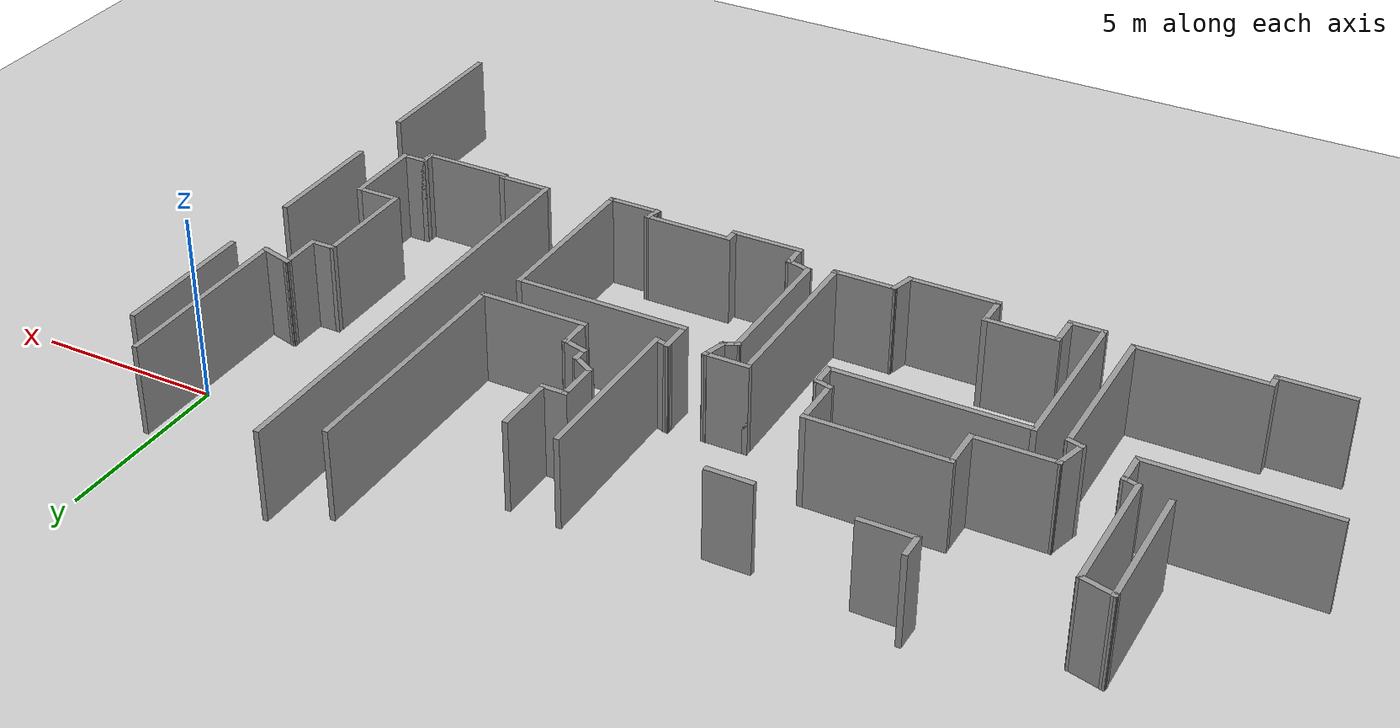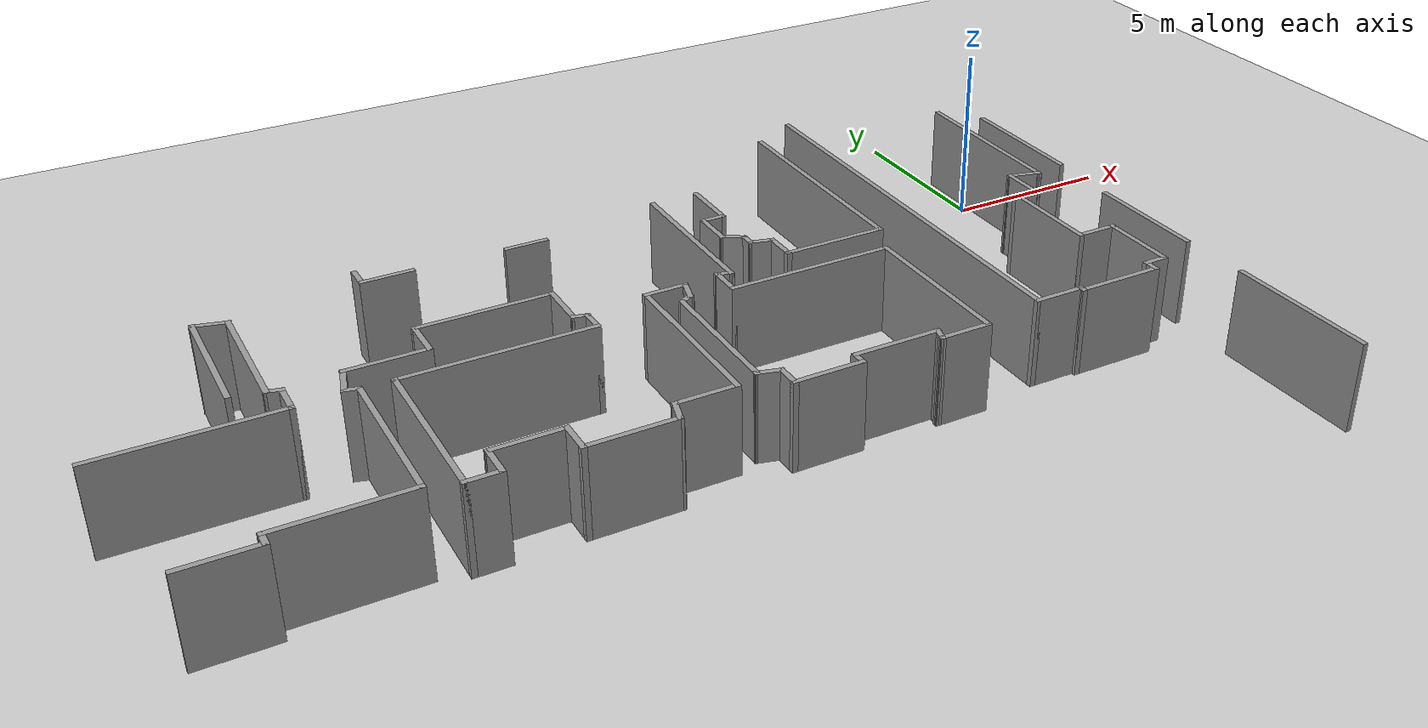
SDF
<sdf version="1.7">
 <world name="default">
  <model name="ground_plane">
   <static>1</static>
   <link name="link">
    <collision name="collision">
     <geometry><plane><normal>0 0 1</normal><size>100 100</size></plane></geometry>
     <surface>
      <contact><collide_bitmask>65535</collide_bitmask></contact>
      <friction><ode><mu>100</mu><mu2>50</mu2></ode></friction>
     </surface>
    </collision>
    <visual name="visual">
     <cast_shadows>0</cast_shadows>
     <geometry><plane><normal>0 0 1</normal><size>100 100</size></plane></geometry>
     <material>
      <script><uri>file://media/materials/scripts/gazebo.material</uri><name>Gazebo/Grey</name></script>
     </material>
    </visual>
   </link>
  </model>
  <model name="Hospital">
   <pose>0.328682 -0.388502 0 0 -0 0</pose>
   <link name="Wall_202">
    <collision name="Wall_202_Collision">
     <geometry><box><size>4.25 0.15 2.5</size></box></geometry>
     <pose>0 0 1.25 0 -0 0</pose>
    </collision>
    <visual name="Wall_202_Visual">
     <pose>0 0 1.25 0 -0 0</pose>
     <geometry><box><size>4.25 0.15 2.5</size></box></geometry>
     <material>
      <script><uri>file://media/materials/scripts/gazebo.material</uri><name>Gazebo/Grey</name></script>
      <ambient>1 1 1 1</ambient>
     </material>
     <meta><layer>0</layer></meta>
    </visual>
    <pose>0.896252 -12.2018 0 0 -0 1.5708</pose>
   </link>
   <link name="Wall_208">
    <collision name="Wall_208_Collision">
     <geometry><box><size>3.5 0.15 2.5</size></box></geometry>
     <pose>0 0 1.25 0 -0 0</pose>
    </collision>
    <visual name="Wall_208_Visual">
     <pose>0 0 1.25 0 -0 0</pose>
     <geometry><box><size>3.5 0.15 2.5</size></box></geometry>
     <material>
      <script><uri>file://media/materials/scripts/gazebo.material</uri><name>Gazebo/Grey</name></script>
      <ambient>1 1 1 1</ambient>
     </material>
     <meta><layer>0</layer></meta>
    </visual>
    <pose>0.824913 -6.44811 0 0 -0 1.5708</pose>
   </link>
   <link name="Wall_214">
    <collision name="Wall_214_Collision">
     <geometry><box><size>4 0.15 2.5</size></box></geometry>
     <pose>0 0 1.25 0 -0 0</pose>
    </collision>
    <visual name="Wall_214_Visual">
     <pose>0 0 1.25 0 -0 0</pose>
     <geometry><box><size>4 0.15 2.5</size></box></geometry>
     <material>
      <script><uri>file://media/materials/scripts/gazebo.material</uri><name>Gazebo/Grey</name></script>
      <ambient>1 1 1 1</ambient>
     </material>
     <meta><layer>0</layer></meta>
    </visual>
    <pose>0.924913 -0.648111 0 0 -0 1.5708</pose>
   </link>
   <link name="Wall_230">
    <collision name="Wall_230_Collision">
     <geometry><box><size>5.25 0.15 2.5</size></box></geometry>
     <pose>0 0 1.25 0 -0 0</pose>
    </collision>
    <visual name="Wall_230_Visual">
     <pose>0 0 1.25 0 -0 0</pose>
     <geometry><box><size>5.25 0.15 2.5</size></box></geometry>
     <material>
      <script><uri>file://media/materials/scripts/gazebo.material</uri><name>Gazebo/Grey</name></script>
      <ambient>1 1 1 1</ambient>
     </material>
     <meta><layer>0</layer></meta>
    </visual>
    <pose>-0.019796 -0.193556 0 0 -0 -1.5708</pose>
   </link>
   <link name="Wall_231">
    <collision name="Wall_231_Collision">
     <geometry><box><size>1 0.15 2.5</size></box></geometry>
     <pose>0 0 1.25 0 -0 0</pose>
    </collision>
    <visual name="Wall_231_Visual">
     <pose>0 0 1.25 0 -0 0</pose>
     <geometry><box><size>1 0.15 2.5</size></box></geometry>
     <material>
      <script><uri>file://media/materials/scripts/gazebo.material</uri><name>Gazebo/Grey</name></script>
      <ambient>1 1 1 1</ambient>
     </material>
     <meta><layer>0</layer></meta>
    </visual>
    <pose>-0.430314 -2.63356 0 0 -0 2.87979</pose>
   </link>
   <link name="Wall_232">
    <collision name="Wall_232_Collision">
     <geometry><box><size>1.25 0.15 2.5</size></box></geometry>
     <pose>0 0 1.25 0 -0 0</pose>
    </collision>
    <visual name="Wall_232_Visual">
     <pose>0 0 1.25 0 -0 0</pose>
     <geometry><box><size>1.25 0.15 2.5</size></box></geometry>
     <material>
      <script><uri>file://media/materials/scripts/gazebo.material</uri><name>Gazebo/Grey</name></script>
      <ambient>1 1 1 1</ambient>
     </material>
     <meta><layer>0</layer></meta>
    </visual>
    <pose>-0.840833 -3.07356 0 0 -0 -1.5708</pose>
   </link>
   <link name="Wall_233">
    <collision name="Wall_233_Collision">
     <geometry><box><size>0.75 0.15 2.5</size></box></geometry>
     <pose>0 0 1.25 0 -0 0</pose>
    </collision>
    <visual name="Wall_233_Visual">
     <pose>0 0 1.25 0 -0 0</pose>
     <geometry><box><size>0.75 0.15 2.5</size></box></geometry>
     <material>
      <script><uri>file://media/materials/scripts/gazebo.material</uri><name>Gazebo/Grey</name></script>
      <ambient>1 1 1 1</ambient>
     </material>
     <meta><layer>0</layer></meta>
    </visual>
    <pose>-1.14083 -3.62356 0 0 -0 3.14159</pose>
   </link>
   <link name="Wall_234">
    <collision name="Wall_234_Collision">
     <geometry><box><size>3 0.15 2.5</size></box></geometry>
     <pose>0 0 1.25 0 -0 0</pose>
    </collision>
    <visual name="Wall_234_Visual">
     <pose>0 0 1.25 0 -0 0</pose>
     <geometry><box><size>3 0.15 2.5</size></box></geometry>
     <material>
      <script><uri>file://media/materials/scripts/gazebo.material</uri><name>Gazebo/Grey</name></script>
      <ambient>1 1 1 1</ambient>
     </material>
     <meta><layer>0</layer></meta>
    </visual>
    <pose>-1.44083 -5.04856 0 0 -0 -1.5708</pose>
   </link>
   <link name="Wall_235">
    <collision name="Wall_235_Collision">
     <geometry><box><size>1.25 0.15 2.5</size></box></geometry>
     <pose>0 0 1.25 0 -0 0</pose>
    </collision>
    <visual name="Wall_235_Visual">
     <pose>0 0 1.25 0 -0 0</pose>
     <geometry><box><size>1.25 0.15 2.5</size></box></geometry>
     <material>
      <script><uri>file://media/materials/scripts/gazebo.material</uri><name>Gazebo/Grey</name></script>
      <ambient>1 1 1 1</ambient>
     </material>
     <meta><layer>0</layer></meta>
    </visual>
    <pose>-0.890832 -6.47356 0 0 -0 0</pose>
   </link>
   <link name="Wall_236">
    <collision name="Wall_236_Collision">
     <geometry><box><size>2.25 0.15 2.5</size></box></geometry>
     <pose>0 0 1.25 0 -0 0</pose>
    </collision>
    <visual name="Wall_236_Visual">
     <pose>0 0 1.25 0 -0 0</pose>
     <geometry><box><size>2.25 0.15 2.5</size></box></geometry>
     <material>
      <script><uri>file://media/materials/scripts/gazebo.material</uri><name>Gazebo/Grey</name></script>
      <ambient>1 1 1 1</ambient>
     </material>
     <meta><layer>0</layer></meta>
    </visual>
    <pose>-0.340833 -7.52356 0 0 -0 -1.5708</pose>
   </link>
   <link name="Wall_237">
    <collision name="Wall_237_Collision">
     <geometry><box><size>0.75 0.15 2.5</size></box></geometry>
     <pose>0 0 1.25 0 -0 0</pose>
    </collision>
    <visual name="Wall_237_Visual">
     <pose>0 0 1.25 0 -0 0</pose>
     <geometry><box><size>0.75 0.15 2.5</size></box></geometry>
     <material>
      <script><uri>file://media/materials/scripts/gazebo.material</uri><name>Gazebo/Grey</name></script>
      <ambient>1 1 1 1</ambient>
     </material>
     <meta><layer>0</layer></meta>
    </visual>
    <pose>-0.640833 -8.57356 0 0 -0 3.14159</pose>
   </link>
   <link name="Wall_238">
    <collision name="Wall_238_Collision">
     <geometry><box><size>0.5 0.15 2.5</size></box></geometry>
     <pose>0 0 1.25 0 -0 0</pose>
    </collision>
    <visual name="Wall_238_Visual">
     <pose>0 0 1.25 0 -0 0</pose>
     <geometry><box><size>0.5 0.15 2.5</size></box></geometry>
     <material>
      <script><uri>file://media/materials/scripts/gazebo.material</uri><name>Gazebo/Grey</name></script>
      <ambient>1 1 1 1</ambient>
     </material>
     <meta><layer>0</layer></meta>
    </visual>
    <pose>-0.940832 -8.74856 0 0 -0 -1.5708</pose>
   </link>
   <link name="Wall_239">
    <collision name="Wall_239_Collision">
     <geometry><box><size>2.5 0.15 2.5</size></box></geometry>
     <pose>0 0 1.25 0 -0 0</pose>
    </collision>
    <visual name="Wall_239_Visual">
     <pose>0 0 1.25 0 -0 0</pose>
     <geometry><box><size>2.5 0.15 2.5</size></box></geometry>
     <material>
      <script><uri>file://media/materials/scripts/gazebo.material</uri><name>Gazebo/Grey</name></script>
      <ambient>1 1 1 1</ambient>
     </material>
     <meta><layer>0</layer></meta>
    </visual>
    <pose>-2.11583 -8.92356 0 0 -0 3.14159</pose>
   </link>
   <link name="Wall_240">
    <collision name="Wall_240_Collision">
     <geometry><box><size>0.25 0.15 2.5</size></box></geometry>
     <pose>0 0 1.25 0 -0 0</pose>
    </collision>
    <visual name="Wall_240_Visual">
     <pose>0 0 1.25 0 -0 0</pose>
     <geometry><box><size>0.25 0.15 2.5</size></box></geometry>
     <material>
      <script><uri>file://media/materials/scripts/gazebo.material</uri><name>Gazebo/Grey</name></script>
      <ambient>1 1 1 1</ambient>
     </material>
     <meta><layer>0</layer></meta>
    </visual>
    <pose>-3.29083 -8.87356 0 0 -0 1.5708</pose>
   </link>
   <link name="Wall_241">
    <collision name="Wall_241_Collision">
     <geometry><box><size>1.5 0.15 2.5</size></box></geometry>
     <pose>0 0 1.25 0 -0 0</pose>
    </collision>
    <visual name="Wall_241_Visual">
     <pose>0 0 1.25 0 -0 0</pose>
     <geometry><box><size>1.5 0.15 2.5</size></box></geometry>
     <material>
      <script><uri>file://media/materials/scripts/gazebo.material</uri><name>Gazebo/Grey</name></script>
      <ambient>1 1 1 1</ambient>
     </material>
     <meta><layer>0</layer></meta>
    </visual>
    <pose>-3.96583 -8.82356 0 0 -0 3.14159</pose>
   </link>
   <link name="Wall_242">
    <collision name="Wall_242_Collision">
     <geometry><box><size>12.75 0.15 2.5</size></box></geometry>
     <pose>0 0 1.25 0 -0 0</pose>
    </collision>
    <visual name="Wall_242_Visual">
     <pose>0 0 1.25 0 -0 0</pose>
     <geometry><box><size>12.75 0.15 2.5</size></box></geometry>
     <material>
      <script><uri>file://media/materials/scripts/gazebo.material</uri><name>Gazebo/Grey</name></script>
      <ambient>1 1 1 1</ambient>
     </material>
     <meta><layer>0</layer></meta>
    </visual>
    <pose>-4.64083 -2.52356 0 0 -0 1.5708</pose>
   </link>
   <link name="Wall_252">
    <collision name="Wall_252_Collision">
     <geometry><box><size>6.75 0.15 2.5</size></box></geometry>
     <pose>0 0 1.25 0 -0 0</pose>
    </collision>
    <visual name="Wall_252_Visual">
     <pose>0 0 1.25 0 -0 0</pose>
     <geometry><box><size>6.75 0.15 2.5</size></box></geometry>
     <material>
      <script><uri>file://media/materials/scripts/gazebo.material</uri><name>Gazebo/Grey</name></script>
      <ambient>1 1 1 1</ambient>
     </material>
     <meta><layer>0</layer></meta>
    </visual>
    <pose>-5.99083 -0.273559 0 0 -0 -1.5708</pose>
   </link>
   <link name="Wall_253">
    <collision name="Wall_253_Collision">
     <geometry><box><size>3 0.15 2.5</size></box></geometry>
     <pose>0 0 1.25 0 -0 0</pose>
    </collision>
    <visual name="Wall_253_Visual">
     <pose>0 0 1.25 0 -0 0</pose>
     <geometry><box><size>3 0.15 2.5</size></box></geometry>
     <material>
      <script><uri>file://media/materials/scripts/gazebo.material</uri><name>Gazebo/Grey</name></script>
      <ambient>1 1 1 1</ambient>
     </material>
     <meta><layer>0</layer></meta>
    </visual>
    <pose>-7.41583 -3.57356 0 0 -0 3.14159</pose>
   </link>
   <link name="Wall_254">
    <collision name="Wall_254_Collision">
     <geometry><box><size>1 0.15 2.5</size></box></geometry>
     <pose>0 0 1.25 0 -0 0</pose>
    </collision>
    <visual name="Wall_254_Visual">
     <pose>0 0 1.25 0 -0 0</pose>
     <geometry><box><size>1 0.15 2.5</size></box></geometry>
     <material>
      <script><uri>file://media/materials/scripts/gazebo.material</uri><name>Gazebo/Grey</name></script>
      <ambient>1 1 1 1</ambient>
     </material>
     <meta><layer>0</layer></meta>
    </visual>
    <pose>-8.84083 -3.14856 0 0 -0 1.5708</pose>
   </link>
   <link name="Wall_255">
    <collision name="Wall_255_Collision">
     <geometry><box><size>0.75 0.15 2.5</size></box></geometry>
     <pose>0 0 1.25 0 -0 0</pose>
    </collision>
    <visual name="Wall_255_Visual">
     <pose>0 0 1.25 0 -0 0</pose>
     <geometry><box><size>0.75 0.15 2.5</size></box></geometry>
     <material>
      <script><uri>file://media/materials/scripts/gazebo.material</uri><name>Gazebo/Grey</name></script>
      <ambient>1 1 1 1</ambient>
     </material>
     <meta><layer>0</layer></meta>
    </visual>
    <pose>-9.13061 -2.64591 0 0 -0 2.87979</pose>
   </link>
   <link name="Wall_256">
    <collision name="Wall_256_Collision">
     <geometry><box><size>0.5 0.15 2.5</size></box></geometry>
     <pose>0 0 1.25 0 -0 0</pose>
    </collision>
    <visual name="Wall_256_Visual">
     <pose>0 0 1.25 0 -0 0</pose>
     <geometry><box><size>0.5 0.15 2.5</size></box></geometry>
     <material>
      <script><uri>file://media/materials/scripts/gazebo.material</uri><name>Gazebo/Grey</name></script>
      <ambient>1 1 1 1</ambient>
     </material>
     <meta><layer>0</layer></meta>
    </visual>
    <pose>-9.42039 -2.39327 0 0 -0 1.5708</pose>
   </link>
   <link name="Wall_257">
    <collision name="Wall_257_Collision">
     <geometry><box><size>0.75 0.15 2.5</size></box></geometry>
     <pose>0 0 1.25 0 -0 0</pose>
    </collision>
    <visual name="Wall_257_Visual">
     <pose>0 0 1.25 0 -0 0</pose>
     <geometry><box><size>0.75 0.15 2.5</size></box></geometry>
     <material>
      <script><uri>file://media/materials/scripts/gazebo.material</uri><name>Gazebo/Grey</name></script>
      <ambient>1 1 1 1</ambient>
     </material>
     <meta><layer>0</layer></meta>
    </visual>
    <pose>-9.6802 -2.06827 0 0 -0 2.61799</pose>
   </link>
   <link name="Wall_258">
    <collision name="Wall_258_Collision">
     <geometry><box><size>1.25 0.15 2.5</size></box></geometry>
     <pose>0 0 1.25 0 -0 0</pose>
    </collision>
    <visual name="Wall_258_Visual">
     <pose>0 0 1.25 0 -0 0</pose>
     <geometry><box><size>1.25 0.15 2.5</size></box></geometry>
     <material>
      <script><uri>file://media/materials/scripts/gazebo.material</uri><name>Gazebo/Grey</name></script>
      <ambient>1 1 1 1</ambient>
     </material>
     <meta><layer>0</layer></meta>
    </visual>
    <pose>-9.94 -1.36827 0 0 -0 1.5708</pose>
   </link>
   <link name="Wall_259">
    <collision name="Wall_259_Collision">
     <geometry><box><size>0.75 0.15 2.5</size></box></geometry>
     <pose>0 0 1.25 0 -0 0</pose>
    </collision>
    <visual name="Wall_259_Visual">
     <pose>0 0 1.25 0 -0 0</pose>
     <geometry><box><size>0.75 0.15 2.5</size></box></geometry>
     <material>
      <script><uri>file://media/materials/scripts/gazebo.material</uri><name>Gazebo/Grey</name></script>
      <ambient>1 1 1 1</ambient>
     </material>
     <meta><layer>0</layer></meta>
    </visual>
    <pose>-9.64 -0.818268 0 0 -0 0</pose>
   </link>
   <link name="Wall_260">
    <collision name="Wall_260_Collision">
     <geometry><box><size>1.75 0.15 2.5</size></box></geometry>
     <pose>0 0 1.25 0 -0 0</pose>
    </collision>
    <visual name="Wall_260_Visual">
     <pose>0 0 1.25 0 -0 0</pose>
     <geometry><box><size>1.75 0.15 2.5</size></box></geometry>
     <material>
      <script><uri>file://media/materials/scripts/gazebo.material</uri><name>Gazebo/Grey</name></script>
      <ambient>1 1 1 1</ambient>
     </material>
     <meta><layer>0</layer></meta>
    </visual>
    <pose>-9.34 -0.018268 0 0 -0 1.5708</pose>
   </link>
   <link name="Wall_262">
    <collision name="Wall_262_Collision">
     <geometry><box><size>4.75 0.15 2.5</size></box></geometry>
     <pose>0 0 1.25 0 -0 0</pose>
    </collision>
    <visual name="Wall_262_Visual">
     <pose>0 0 1.25 0 -0 0</pose>
     <geometry><box><size>4.75 0.15 2.5</size></box></geometry>
     <material>
      <script><uri>file://media/materials/scripts/gazebo.material</uri><name>Gazebo/Grey</name></script>
      <ambient>1 1 1 1</ambient>
     </material>
     <meta><layer>0</layer></meta>
    </visual>
    <pose>-10.69 -1.51827 0 0 -0 -1.5708</pose>
   </link>
   <link name="Wall_263">
    <collision name="Wall_263_Collision">
     <geometry><box><size>0.5 0.15 2.5</size></box></geometry>
     <pose>0 0 1.25 0 -0 0</pose>
    </collision>
    <visual name="Wall_263_Visual">
     <pose>0 0 1.25 0 -0 0</pose>
     <geometry><box><size>0.5 0.15 2.5</size></box></geometry>
     <material>
      <script><uri>file://media/materials/scripts/gazebo.material</uri><name>Gazebo/Grey</name></script>
      <ambient>1 1 1 1</ambient>
     </material>
     <meta><layer>0</layer></meta>
    </visual>
    <pose>-10.859 -3.77297 0 0 -0 2.87979</pose>
   </link>
   <link name="Wall_264">
    <collision name="Wall_264_Collision">
     <geometry><box><size>1 0.15 2.5</size></box></geometry>
     <pose>0 0 1.25 0 -0 0</pose>
    </collision>
    <visual name="Wall_264_Visual">
     <pose>0 0 1.25 0 -0 0</pose>
     <geometry><box><size>1 0.15 2.5</size></box></geometry>
     <material>
      <script><uri>file://media/materials/scripts/gazebo.material</uri><name>Gazebo/Grey</name></script>
      <ambient>1 1 1 1</ambient>
     </material>
     <meta><layer>0</layer></meta>
    </visual>
    <pose>-11.0281 -4.15268 0 0 -0 -1.5708</pose>
   </link>
   <link name="Wall_265">
    <collision name="Wall_265_Collision">
     <geometry><box><size>4.75 0.15 2.5</size></box></geometry>
     <pose>0 0 1.25 0 -0 0</pose>
    </collision>
    <visual name="Wall_265_Visual">
     <pose>0 0 1.25 0 -0 0</pose>
     <geometry><box><size>4.75 0.15 2.5</size></box></geometry>
     <material>
      <script><uri>file://media/materials/scripts/gazebo.material</uri><name>Gazebo/Grey</name></script>
      <ambient>1 1 1 1</ambient>
     </material>
     <meta><layer>0</layer></meta>
    </visual>
    <pose>-8.72808 -4.57768 0 0 -0 0</pose>
   </link>
   <link name="Wall_266">
    <collision name="Wall_266_Collision">
     <geometry><box><size>4.75 0.15 2.5</size></box></geometry>
     <pose>0 0 1.25 0 -0 0</pose>
    </collision>
    <visual name="Wall_266_Visual">
     <pose>0 0 1.25 0 -0 0</pose>
     <geometry><box><size>4.75 0.15 2.5</size></box></geometry>
     <material>
      <script><uri>file://media/materials/scripts/gazebo.material</uri><name>Gazebo/Grey</name></script>
      <ambient>1 1 1 1</ambient>
     </material>
     <meta><layer>0</layer></meta>
    </visual>
    <pose>-6.42808 -6.87768 0 0 -0 -1.5708</pose>
   </link>
   <link name="Wall_267">
    <collision name="Wall_267_Collision">
     <geometry><box><size>1.5 0.15 2.5</size></box></geometry>
     <pose>0 0 1.25 0 -0 0</pose>
    </collision>
    <visual name="Wall_267_Visual">
     <pose>0 0 1.25 0 -0 0</pose>
     <geometry><box><size>1.5 0.15 2.5</size></box></geometry>
     <material>
      <script><uri>file://media/materials/scripts/gazebo.material</uri><name>Gazebo/Grey</name></script>
      <ambient>1 1 1 1</ambient>
     </material>
     <meta><layer>0</layer></meta>
    </visual>
    <pose>-7.10308 -9.17768 0 0 -0 3.14159</pose>
   </link>
   <link name="Wall_268">
    <collision name="Wall_268_Collision">
     <geometry><box><size>0.5 0.15 2.5</size></box></geometry>
     <pose>0 0 1.25 0 -0 0</pose>
    </collision>
    <visual name="Wall_268_Visual">
     <pose>0 0 1.25 0 -0 0</pose>
     <geometry><box><size>0.5 0.15 2.5</size></box></geometry>
     <material>
      <script><uri>file://media/materials/scripts/gazebo.material</uri><name>Gazebo/Grey</name></script>
      <ambient>1 1 1 1</ambient>
     </material>
     <meta><layer>0</layer></meta>
    </visual>
    <pose>-7.73278 -9.00864 0 0 -0 1.309</pose>
   </link>
   <link name="Wall_269">
    <collision name="Wall_269_Collision">
     <geometry><box><size>2.5 0.15 2.5</size></box></geometry>
     <pose>0 0 1.25 0 -0 0</pose>
    </collision>
    <visual name="Wall_269_Visual">
     <pose>0 0 1.25 0 -0 0</pose>
     <geometry><box><size>2.5 0.15 2.5</size></box></geometry>
     <material>
      <script><uri>file://media/materials/scripts/gazebo.material</uri><name>Gazebo/Grey</name></script>
      <ambient>1 1 1 1</ambient>
     </material>
     <meta><layer>0</layer></meta>
    </visual>
    <pose>-8.86249 -8.83961 0 0 -0 3.14159</pose>
   </link>
   <link name="Wall_270">
    <collision name="Wall_270_Collision">
     <geometry><box><size>0.5 0.15 2.5</size></box></geometry>
     <pose>0 0 1.25 0 -0 0</pose>
    </collision>
    <visual name="Wall_270_Visual">
     <pose>0 0 1.25 0 -0 0</pose>
     <geometry><box><size>0.5 0.15 2.5</size></box></geometry>
     <material>
      <script><uri>file://media/materials/scripts/gazebo.material</uri><name>Gazebo/Grey</name></script>
      <ambient>1 1 1 1</ambient>
     </material>
     <meta><layer>0</layer></meta>
    </visual>
    <pose>-10.0375 -9.01461 0 0 -0 -1.5708</pose>
   </link>
   <link name="Wall_271">
    <collision name="Wall_271_Collision">
     <geometry><box><size>2 0.15 2.5</size></box></geometry>
     <pose>0 0 1.25 0 -0 0</pose>
    </collision>
    <visual name="Wall_271_Visual">
     <pose>0 0 1.25 0 -0 0</pose>
     <geometry><box><size>2 0.15 2.5</size></box></geometry>
     <material>
      <script><uri>file://media/materials/scripts/gazebo.material</uri><name>Gazebo/Grey</name></script>
      <ambient>1 1 1 1</ambient>
     </material>
     <meta><layer>0</layer></meta>
    </visual>
    <pose>-10.9625 -9.18961 0 0 -0 3.14159</pose>
   </link>
   <link name="Wall_272">
    <collision name="Wall_272_Collision">
     <geometry><box><size>0.75 0.15 2.5</size></box></geometry>
     <pose>0 0 1.25 0 -0 0</pose>
    </collision>
    <visual name="Wall_272_Visual">
     <pose>0 0 1.25 0 -0 0</pose>
     <geometry><box><size>0.75 0.15 2.5</size></box></geometry>
     <material>
      <script><uri>file://media/materials/scripts/gazebo.material</uri><name>Gazebo/Grey</name></script>
      <ambient>1 1 1 1</ambient>
     </material>
     <meta><layer>0</layer></meta>
    </visual>
    <pose>-11.8875 -8.88961 0 0 -0 1.5708</pose>
   </link>
   <link name="Wall_273">
    <collision name="Wall_273_Collision">
     <geometry><box><size>0.75 0.15 2.5</size></box></geometry>
     <pose>0 0 1.25 0 -0 0</pose>
    </collision>
    <visual name="Wall_273_Visual">
     <pose>0 0 1.25 0 -0 0</pose>
     <geometry><box><size>0.75 0.15 2.5</size></box></geometry>
     <material>
      <script><uri>file://media/materials/scripts/gazebo.material</uri><name>Gazebo/Grey</name></script>
      <ambient>1 1 1 1</ambient>
     </material>
     <meta><layer>0</layer></meta>
    </visual>
    <pose>-12.1773 -8.51196 0 0 -0 2.87979</pose>
   </link>
   <link name="Wall_274">
    <collision name="Wall_274_Collision">
     <geometry><box><size>4 0.15 2.5</size></box></geometry>
     <pose>0 0 1.25 0 -0 0</pose>
    </collision>
    <visual name="Wall_274_Visual">
     <pose>0 0 1.25 0 -0 0</pose>
     <geometry><box><size>4 0.15 2.5</size></box></geometry>
     <material>
      <script><uri>file://media/materials/scripts/gazebo.material</uri><name>Gazebo/Grey</name></script>
      <ambient>1 1 1 1</ambient>
     </material>
     <meta><layer>0</layer></meta>
    </visual>
    <pose>-12.467 -6.50932 0 0 -0 1.5708</pose>
   </link>
   <link name="Wall_275">
    <collision name="Wall_275_Collision">
     <geometry><box><size>0.5 0.15 2.5</size></box></geometry>
     <pose>0 0 1.25 0 -0 0</pose>
    </collision>
    <visual name="Wall_275_Visual">
     <pose>0 0 1.25 0 -0 0</pose>
     <geometry><box><size>0.5 0.15 2.5</size></box></geometry>
     <material>
      <script><uri>file://media/materials/scripts/gazebo.material</uri><name>Gazebo/Grey</name></script>
      <ambient>1 1 1 1</ambient>
     </material>
     <meta><layer>0</layer></meta>
    </visual>
    <pose>-12.3155 -4.49682 0 0 -0 0.523599</pose>
   </link>
   <link name="Wall_276">
    <collision name="Wall_276_Collision">
     <geometry><box><size>0.75 0.15 2.5</size></box></geometry>
     <pose>0 0 1.25 0 -0 0</pose>
    </collision>
    <visual name="Wall_276_Visual">
     <pose>0 0 1.25 0 -0 0</pose>
     <geometry><box><size>0.75 0.15 2.5</size></box></geometry>
     <material>
      <script><uri>file://media/materials/scripts/gazebo.material</uri><name>Gazebo/Grey</name></script>
      <ambient>1 1 1 1</ambient>
     </material>
     <meta><layer>0</layer></meta>
    </visual>
    <pose>-12.0863 -4.11954 0 0 -0 1.309</pose>
   </link>
   <link name="Wall_277">
    <collision name="Wall_277_Collision">
     <geometry><box><size>1.25 0.15 2.5</size></box></geometry>
     <pose>0 0 1.25 0 -0 0</pose>
    </collision>
    <visual name="Wall_277_Visual">
     <pose>0 0 1.25 0 -0 0</pose>
     <geometry><box><size>1.25 0.15 2.5</size></box></geometry>
     <material>
      <script><uri>file://media/materials/scripts/gazebo.material</uri><name>Gazebo/Grey</name></script>
      <ambient>1 1 1 1</ambient>
     </material>
     <meta><layer>0</layer></meta>
    </visual>
    <pose>-12.5586 -3.82976 0 0 -0 3.14159</pose>
   </link>
   <link name="Wall_278">
    <collision name="Wall_278_Collision">
     <geometry><box><size>5 0.15 2.5</size></box></geometry>
     <pose>0 0 1.25 0 -0 0</pose>
    </collision>
    <visual name="Wall_278_Visual">
     <pose>0 0 1.25 0 -0 0</pose>
     <geometry><box><size>5 0.15 2.5</size></box></geometry>
     <material>
      <script><uri>file://media/materials/scripts/gazebo.material</uri><name>Gazebo/Grey</name></script>
      <ambient>1 1 1 1</ambient>
     </material>
     <meta><layer>0</layer></meta>
    </visual>
    <pose>-13.1086 -6.25476 0 0 -0 -1.5708</pose>
   </link>
   <link name="Wall_279">
    <collision name="Wall_279_Collision">
     <geometry><box><size>1.75 0.15 2.5</size></box></geometry>
     <pose>0 0 1.25 0 -0 0</pose>
    </collision>
    <visual name="Wall_279_Visual">
     <pose>0 0 1.25 0 -0 0</pose>
     <geometry><box><size>1.75 0.15 2.5</size></box></geometry>
     <material>
      <script><uri>file://media/materials/scripts/gazebo.material</uri><name>Gazebo/Grey</name></script>
      <ambient>1 1 1 1</ambient>
     </material>
     <meta><layer>0</layer></meta>
    </visual>
    <pose>-13.9086 -8.67976 0 0 -0 3.14159</pose>
   </link>
   <link name="Wall_280">
    <collision name="Wall_280_Collision">
     <geometry><box><size>0.75 0.15 2.5</size></box></geometry>
     <pose>0 0 1.25 0 -0 0</pose>
    </collision>
    <visual name="Wall_280_Visual">
     <pose>0 0 1.25 0 -0 0</pose>
     <geometry><box><size>0.75 0.15 2.5</size></box></geometry>
     <material>
      <script><uri>file://media/materials/scripts/gazebo.material</uri><name>Gazebo/Grey</name></script>
      <ambient>1 1 1 1</ambient>
     </material>
     <meta><layer>0</layer></meta>
    </visual>
    <pose>-14.7863 -8.96954 0 0 -0 -1.8326</pose>
   </link>
   <link name="Wall_281">
    <collision name="Wall_281_Collision">
     <geometry><box><size>2.5 0.15 2.5</size></box></geometry>
     <pose>0 0 1.25 0 -0 0</pose>
    </collision>
    <visual name="Wall_281_Visual">
     <pose>0 0 1.25 0 -0 0</pose>
     <geometry><box><size>2.5 0.15 2.5</size></box></geometry>
     <material>
      <script><uri>file://media/materials/scripts/gazebo.material</uri><name>Gazebo/Grey</name></script>
      <ambient>1 1 1 1</ambient>
     </material>
     <meta><layer>0</layer></meta>
    </visual>
    <pose>-16.0389 -9.25932 0 0 -0 3.14159</pose>
   </link>
   <link name="Wall_282">
    <collision name="Wall_282_Collision">
     <geometry><box><size>1 0.15 2.5</size></box></geometry>
     <pose>0 0 1.25 0 -0 0</pose>
    </collision>
    <visual name="Wall_282_Visual">
     <pose>0 0 1.25 0 -0 0</pose>
     <geometry><box><size>1 0.15 2.5</size></box></geometry>
     <material>
      <script><uri>file://media/materials/scripts/gazebo.material</uri><name>Gazebo/Grey</name></script>
      <ambient>1 1 1 1</ambient>
     </material>
     <meta><layer>0</layer></meta>
    </visual>
    <pose>-17.2139 -8.83432 0 0 -0 1.5708</pose>
   </link>
   <link name="Wall_283">
    <collision name="Wall_283_Collision">
     <geometry><box><size>2 0.15 2.5</size></box></geometry>
     <pose>0 0 1.25 0 -0 0</pose>
    </collision>
    <visual name="Wall_283_Visual">
     <pose>0 0 1.25 0 -0 0</pose>
     <geometry><box><size>2 0.15 2.5</size></box></geometry>
     <material>
      <script><uri>file://media/materials/scripts/gazebo.material</uri><name>Gazebo/Grey</name></script>
      <ambient>1 1 1 1</ambient>
     </material>
     <meta><layer>0</layer></meta>
    </visual>
    <pose>-18.1389 -8.40932 0 0 -0 3.14159</pose>
   </link>
   <link name="Wall_284">
    <collision name="Wall_284_Collision">
     <geometry><box><size>1 0.15 2.5</size></box></geometry>
     <pose>0 0 1.25 0 -0 0</pose>
    </collision>
    <visual name="Wall_284_Visual">
     <pose>0 0 1.25 0 -0 0</pose>
     <geometry><box><size>1 0.15 2.5</size></box></geometry>
     <material>
      <script><uri>file://media/materials/scripts/gazebo.material</uri><name>Gazebo/Grey</name></script>
      <ambient>1 1 1 1</ambient>
     </material>
     <meta><layer>0</layer></meta>
    </visual>
    <pose>-19.0639 -8.83432 0 0 -0 -1.5708</pose>
   </link>
   <link name="Wall_285">
    <collision name="Wall_285_Collision">
     <geometry><box><size>1 0.15 2.5</size></box></geometry>
     <pose>0 0 1.25 0 -0 0</pose>
    </collision>
    <visual name="Wall_285_Visual">
     <pose>0 0 1.25 0 -0 0</pose>
     <geometry><box><size>1 0.15 2.5</size></box></geometry>
     <material>
      <script><uri>file://media/materials/scripts/gazebo.material</uri><name>Gazebo/Grey</name></script>
      <ambient>1 1 1 1</ambient>
     </material>
     <meta><layer>0</layer></meta>
    </visual>
    <pose>-19.4889 -9.25932 0 0 -0 3.14159</pose>
   </link>
   <link name="Wall_286">
    <collision name="Wall_286_Collision">
     <geometry><box><size>4.75 0.15 2.5</size></box></geometry>
     <pose>0 0 1.25 0 -0 0</pose>
    </collision>
    <visual name="Wall_286_Visual">
     <pose>0 0 1.25 0 -0 0</pose>
     <geometry><box><size>4.75 0.15 2.5</size></box></geometry>
     <material>
      <script><uri>file://media/materials/scripts/gazebo.material</uri><name>Gazebo/Grey</name></script>
      <ambient>1 1 1 1</ambient>
     </material>
     <meta><layer>0</layer></meta>
    </visual>
    <pose>-19.9139 -6.95932 0 0 -0 1.5708</pose>
   </link>
   <link name="Wall_287">
    <collision name="Wall_287_Collision">
     <geometry><box><size>5.25 0.15 2.5</size></box></geometry>
     <pose>0 0 1.25 0 -0 0</pose>
    </collision>
    <visual name="Wall_287_Visual">
     <pose>0 0 1.25 0 -0 0</pose>
     <geometry><box><size>5.25 0.15 2.5</size></box></geometry>
     <material>
      <script><uri>file://media/materials/scripts/gazebo.material</uri><name>Gazebo/Grey</name></script>
      <ambient>1 1 1 1</ambient>
     </material>
     <meta><layer>0</layer></meta>
    </visual>
    <pose>-17.3639 -4.65932 0 0 -0 0</pose>
   </link>
   <link name="Wall_288">
    <collision name="Wall_288_Collision">
     <geometry><box><size>0.75 0.15 2.5</size></box></geometry>
     <pose>0 0 1.25 0 -0 0</pose>
    </collision>
    <visual name="Wall_288_Visual">
     <pose>0 0 1.25 0 -0 0</pose>
     <geometry><box><size>0.75 0.15 2.5</size></box></geometry>
     <material>
      <script><uri>file://media/materials/scripts/gazebo.material</uri><name>Gazebo/Grey</name></script>
      <ambient>1 1 1 1</ambient>
     </material>
     <meta><layer>0</layer></meta>
    </visual>
    <pose>-14.8139 -4.35932 0 0 -0 1.5708</pose>
   </link>
   <link name="Wall_289">
    <collision name="Wall_289_Collision">
     <geometry><box><size>0.5 0.15 2.5</size></box></geometry>
     <pose>0 0 1.25 0 -0 0</pose>
    </collision>
    <visual name="Wall_289_Visual">
     <pose>0 0 1.25 0 -0 0</pose>
     <geometry><box><size>0.5 0.15 2.5</size></box></geometry>
     <material>
      <script><uri>file://media/materials/scripts/gazebo.material</uri><name>Gazebo/Grey</name></script>
      <ambient>1 1 1 1</ambient>
     </material>
     <meta><layer>0</layer></meta>
    </visual>
    <pose>-14.983 -4.01402 0 0 -0 2.87979</pose>
   </link>
   <link name="Wall_290">
    <collision name="Wall_290_Collision">
     <geometry><box><size>1.5 0.15 2.5</size></box></geometry>
     <pose>0 0 1.25 0 -0 0</pose>
    </collision>
    <visual name="Wall_290_Visual">
     <pose>0 0 1.25 0 -0 0</pose>
     <geometry><box><size>1.5 0.15 2.5</size></box></geometry>
     <material>
      <script><uri>file://media/materials/scripts/gazebo.material</uri><name>Gazebo/Grey</name></script>
      <ambient>1 1 1 1</ambient>
     </material>
     <meta><layer>0</layer></meta>
    </visual>
    <pose>-15.152 -3.29373 0 0 -0 1.5708</pose>
   </link>
   <link name="Wall_291">
    <collision name="Wall_291_Collision">
     <geometry><box><size>3.75 0.15 2.5</size></box></geometry>
     <pose>0 0 1.25 0 -0 0</pose>
    </collision>
    <visual name="Wall_291_Visual">
     <pose>0 0 1.25 0 -0 0</pose>
     <geometry><box><size>3.75 0.15 2.5</size></box></geometry>
     <material>
      <script><uri>file://media/materials/scripts/gazebo.material</uri><name>Gazebo/Grey</name></script>
      <ambient>1 1 1 1</ambient>
     </material>
     <meta><layer>0</layer></meta>
    </visual>
    <pose>-16.952 -2.61873 0 0 -0 3.14159</pose>
   </link>
   <link name="Wall_292">
    <collision name="Wall_292_Collision">
     <geometry><box><size>1.25 0.15 2.5</size></box></geometry>
     <pose>0 0 1.25 0 -0 0</pose>
    </collision>
    <visual name="Wall_292_Visual">
     <pose>0 0 1.25 0 -0 0</pose>
     <geometry><box><size>1.25 0.15 2.5</size></box></geometry>
     <material>
      <script><uri>file://media/materials/scripts/gazebo.material</uri><name>Gazebo/Grey</name></script>
      <ambient>1 1 1 1</ambient>
     </material>
     <meta><layer>0</layer></meta>
    </visual>
    <pose>-18.752 -3.16873 0 0 -0 -1.5708</pose>
   </link>
   <link name="Wall_293">
    <collision name="Wall_293_Collision">
     <geometry><box><size>2.25 0.15 2.5</size></box></geometry>
     <pose>0 0 1.25 0 -0 0</pose>
    </collision>
    <visual name="Wall_293_Visual">
     <pose>0 0 1.25 0 -0 0</pose>
     <geometry><box><size>2.25 0.15 2.5</size></box></geometry>
     <material>
      <script><uri>file://media/materials/scripts/gazebo.material</uri><name>Gazebo/Grey</name></script>
      <ambient>1 1 1 1</ambient>
     </material>
     <meta><layer>0</layer></meta>
    </visual>
    <pose>-19.802 -3.71873 0 0 -0 3.14159</pose>
   </link>
   <link name="Wall_294">
    <collision name="Wall_294_Collision">
     <geometry><box><size>1 0.15 2.5</size></box></geometry>
     <pose>0 0 1.25 0 -0 0</pose>
    </collision>
    <visual name="Wall_294_Visual">
     <pose>0 0 1.25 0 -0 0</pose>
     <geometry><box><size>1 0.15 2.5</size></box></geometry>
     <material>
      <script><uri>file://media/materials/scripts/gazebo.material</uri><name>Gazebo/Grey</name></script>
      <ambient>1 1 1 1</ambient>
     </material>
     <meta><layer>0</layer></meta>
    </visual>
    <pose>-20.962 -4.12925 0 0 -0 -1.8326</pose>
   </link>
   <link name="Wall_295">
    <collision name="Wall_295_Collision">
     <geometry><box><size>0.5 0.15 2.5</size></box></geometry>
     <pose>0 0 1.25 0 -0 0</pose>
    </collision>
    <visual name="Wall_295_Visual">
     <pose>0 0 1.25 0 -0 0</pose>
     <geometry><box><size>0.5 0.15 2.5</size></box></geometry>
     <material>
      <script><uri>file://media/materials/scripts/gazebo.material</uri><name>Gazebo/Grey</name></script>
      <ambient>1 1 1 1</ambient>
     </material>
     <meta><layer>0</layer></meta>
    </visual>
    <pose>-20.903 -4.58506 0 0 -0 -0.261799</pose>
   </link>
   <link name="Wall_296">
    <collision name="Wall_296_Collision">
     <geometry><box><size>4.5 0.15 2.5</size></box></geometry>
     <pose>0 0 1.25 0 -0 0</pose>
    </collision>
    <visual name="Wall_296_Visual">
     <pose>0 0 1.25 0 -0 0</pose>
     <geometry><box><size>4.5 0.15 2.5</size></box></geometry>
     <material>
      <script><uri>file://media/materials/scripts/gazebo.material</uri><name>Gazebo/Grey</name></script>
      <ambient>1 1 1 1</ambient>
     </material>
     <meta><layer>0</layer></meta>
    </visual>
    <pose>-20.7339 -6.80535 0 0 -0 -1.5708</pose>
   </link>
   <link name="Wall_297">
    <collision name="Wall_297_Collision">
     <geometry><box><size>3.5 0.15 2.5</size></box></geometry>
     <pose>0 0 1.25 0 -0 0</pose>
    </collision>
    <visual name="Wall_297_Visual">
     <pose>0 0 1.25 0 -0 0</pose>
     <geometry><box><size>3.5 0.15 2.5</size></box></geometry>
     <material>
      <script><uri>file://media/materials/scripts/gazebo.material</uri><name>Gazebo/Grey</name></script>
      <ambient>1 1 1 1</ambient>
     </material>
     <meta><layer>0</layer></meta>
    </visual>
    <pose>-22.4089 -8.98035 0 0 -0 3.14159</pose>
   </link>
   <link name="Wall_298">
    <collision name="Wall_298_Collision">
     <geometry><box><size>0.5 0.15 2.5</size></box></geometry>
     <pose>0 0 1.25 0 -0 0</pose>
    </collision>
    <visual name="Wall_298_Visual">
     <pose>0 0 1.25 0 -0 0</pose>
     <geometry><box><size>0.5 0.15 2.5</size></box></geometry>
     <material>
      <script><uri>file://media/materials/scripts/gazebo.material</uri><name>Gazebo/Grey</name></script>
      <ambient>1 1 1 1</ambient>
     </material>
     <meta><layer>0</layer></meta>
    </visual>
    <pose>-24.0839 -9.15535 0 0 -0 -1.5708</pose>
   </link>
   <link name="Wall_299">
    <collision name="Wall_299_Collision">
     <geometry><box><size>2 0.15 2.5</size></box></geometry>
     <pose>0 0 1.25 0 -0 0</pose>
    </collision>
    <visual name="Wall_299_Visual">
     <pose>0 0 1.25 0 -0 0</pose>
     <geometry><box><size>2 0.15 2.5</size></box></geometry>
     <material>
      <script><uri>file://media/materials/scripts/gazebo.material</uri><name>Gazebo/Grey</name></script>
      <ambient>1 1 1 1</ambient>
     </material>
     <meta><layer>0</layer></meta>
    </visual>
    <pose>-25.0089 -9.33035 0 0 -0 3.14159</pose>
   </link>
   <link name="Wall_303">
    <collision name="Wall_303_Collision">
     <geometry><box><size>4.75 0.15 2.5</size></box></geometry>
     <pose>0 0 1.25 0 -0 0</pose>
    </collision>
    <visual name="Wall_303_Visual">
     <pose>0 0 1.25 0 -0 0</pose>
     <geometry><box><size>4.75 0.15 2.5</size></box></geometry>
     <material>
      <script><uri>file://media/materials/scripts/gazebo.material</uri><name>Gazebo/Grey</name></script>
      <ambient>1 1 1 1</ambient>
     </material>
     <meta><layer>0</layer></meta>
    </visual>
    <pose>-24.6103 -4.6808 0 0 -0 0</pose>
   </link>
   <link name="Wall_304">
    <collision name="Wall_304_Collision">
     <geometry><box><size>1 0.15 2.5</size></box></geometry>
     <pose>0 0 1.25 0 -0 0</pose>
    </collision>
    <visual name="Wall_304_Visual">
     <pose>0 0 1.25 0 -0 0</pose>
     <geometry><box><size>1 0.15 2.5</size></box></geometry>
     <material>
      <script><uri>file://media/materials/scripts/gazebo.material</uri><name>Gazebo/Grey</name></script>
      <ambient>1 1 1 1</ambient>
     </material>
     <meta><layer>0</layer></meta>
    </visual>
    <pose>-22.3103 -4.2558 0 0 -0 1.5708</pose>
   </link>
   <link name="Wall_305">
    <collision name="Wall_305_Collision">
     <geometry><box><size>0.5 0.15 2.5</size></box></geometry>
     <pose>0 0 1.25 0 -0 0</pose>
    </collision>
    <visual name="Wall_305_Visual">
     <pose>0 0 1.25 0 -0 0</pose>
     <geometry><box><size>0.5 0.15 2.5</size></box></geometry>
     <material>
      <script><uri>file://media/materials/scripts/gazebo.material</uri><name>Gazebo/Grey</name></script>
      <ambient>1 1 1 1</ambient>
     </material>
     <meta><layer>0</layer></meta>
    </visual>
    <pose>-22.4793 -3.78551 0 0 -0 2.87979</pose>
   </link>
   <link name="Wall_306">
    <collision name="Wall_306_Collision">
     <geometry><box><size>3.75 0.15 2.5</size></box></geometry>
     <pose>0 0 1.25 0 -0 0</pose>
    </collision>
    <visual name="Wall_306_Visual">
     <pose>0 0 1.25 0 -0 0</pose>
     <geometry><box><size>3.75 0.15 2.5</size></box></geometry>
     <material>
      <script><uri>file://media/materials/scripts/gazebo.material</uri><name>Gazebo/Grey</name></script>
      <ambient>1 1 1 1</ambient>
     </material>
     <meta><layer>0</layer></meta>
    </visual>
    <pose>-22.6483 -1.94021 0 0 -0 1.5708</pose>
   </link>
   <link name="Wall_307">
    <collision name="Wall_307_Collision">
     <geometry><box><size>1 0.15 2.5</size></box></geometry>
     <pose>0 0 1.25 0 -0 0</pose>
    </collision>
    <visual name="Wall_307_Visual">
     <pose>0 0 1.25 0 -0 0</pose>
     <geometry><box><size>1 0.15 2.5</size></box></geometry>
     <material>
      <script><uri>file://media/materials/scripts/gazebo.material</uri><name>Gazebo/Grey</name></script>
      <ambient>1 1 1 1</ambient>
     </material>
     <meta><layer>0</layer></meta>
    </visual>
    <pose>-23.0589 -0.030216 0 0 -0 2.87979</pose>
   </link>
   <link name="Wall_308">
    <collision name="Wall_308_Collision">
     <geometry><box><size>3.75 0.15 2.5</size></box></geometry>
     <pose>0 0 1.25 0 -0 0</pose>
    </collision>
    <visual name="Wall_308_Visual">
     <pose>0 0 1.25 0 -0 0</pose>
     <geometry><box><size>3.75 0.15 2.5</size></box></geometry>
     <material>
      <script><uri>file://media/materials/scripts/gazebo.material</uri><name>Gazebo/Grey</name></script>
      <ambient>1 1 1 1</ambient>
     </material>
     <meta><layer>0</layer></meta>
    </visual>
    <pose>-23.4694 -1.72022 0 0 -0 -1.5708</pose>
   </link>
   <link name="Wall_398">
    <collision name="Wall_398_Collision">
     <geometry><box><size>0.75 0.15 2.5</size></box></geometry>
     <pose>0 0 1.25 0 -0 0</pose>
    </collision>
    <visual name="Wall_398_Visual">
     <pose>0 0 1.25 0 -0 0</pose>
     <geometry><box><size>0.75 0.15 2.5</size></box></geometry>
     <material>
      <script><uri>file://media/materials/scripts/gazebo.material</uri><name>Gazebo/Grey</name></script>
      <ambient>1 1 1 1</ambient>
     </material>
     <meta><layer>0</layer></meta>
    </visual>
    <pose>-19.1851 0.577496 0 0 -0 -1.5708</pose>
   </link>
   <link name="Wall_399">
    <collision name="Wall_399_Collision">
     <geometry><box><size>1.5 0.15 2.5</size></box></geometry>
     <pose>0 0 1.25 0 -0 0</pose>
    </collision>
    <visual name="Wall_399_Visual">
     <pose>0 0 1.25 0 -0 0</pose>
     <geometry><box><size>1.5 0.15 2.5</size></box></geometry>
     <material>
      <script><uri>file://media/materials/scripts/gazebo.material</uri><name>Gazebo/Grey</name></script>
      <ambient>1 1 1 1</ambient>
     </material>
     <meta><layer>0</layer></meta>
    </visual>
    <pose>-18.5101 0.277496 0 0 -0 0</pose>
   </link>
   <link name="Wall_403">
    <collision name="Wall_403_Collision">
     <geometry><box><size>1.25 0.15 2.5</size></box></geometry>
     <pose>0 0 1.25 0 -0 0</pose>
    </collision>
    <visual name="Wall_403_Visual">
     <pose>0 0 1.25 0 -0 0</pose>
     <geometry><box><size>1.25 0.15 2.5</size></box></geometry>
     <material>
      <script><uri>file://media/materials/scripts/gazebo.material</uri><name>Gazebo/Grey</name></script>
      <ambient>1 1 1 1</ambient>
     </material>
     <meta><layer>0</layer></meta>
    </visual>
    <pose>-14.7063 0.214459 0 0 -0 0</pose>
   </link>
   <static>1</static>
  </model>
 </world>
</sdf>
